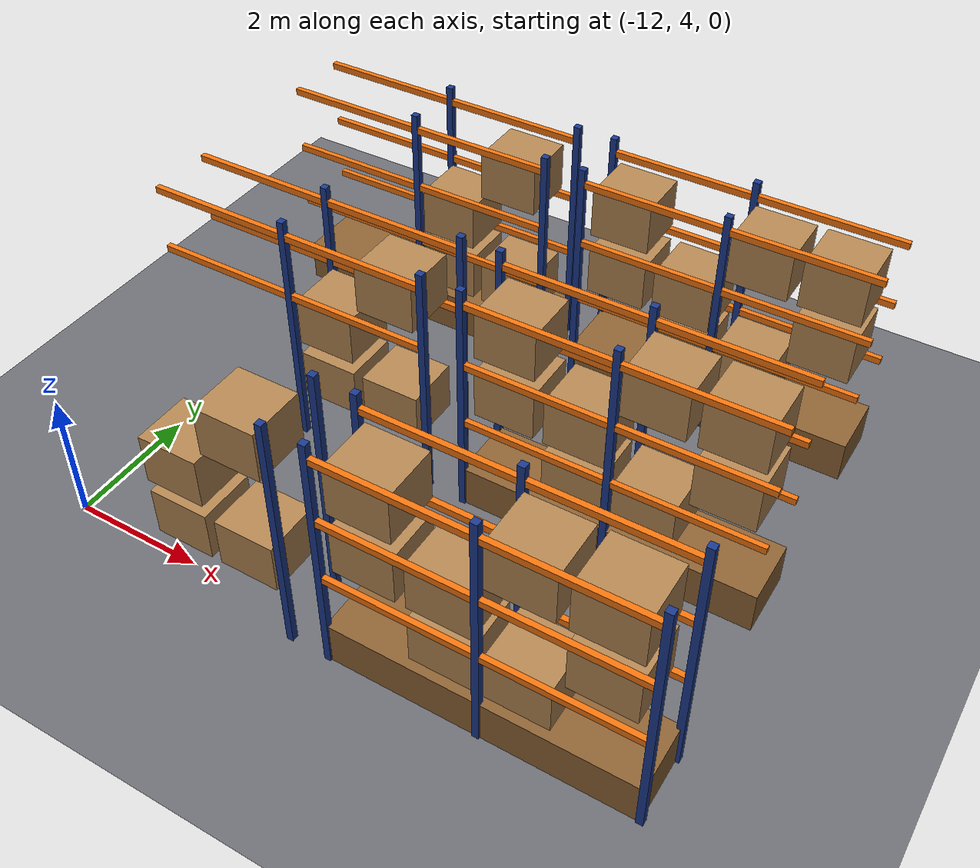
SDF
<sdf version="1.8">
 <world name="factory">
  <model name="ground">
   <static>true</static>
   <link name="l">
    <collision name="c">
     <geometry><plane><normal>0 0 1</normal><size>60 40</size></plane></geometry>
     <surface><friction><ode><mu>1.0</mu><mu2>1.0</mu2></ode></friction></surface>
    </collision>
    <visual name="v">
     <geometry><plane><normal>0 0 1</normal><size>60 40</size></plane></geometry>
     <material>
      <ambient>0.42 0.43 0.45 1</ambient>
      <diffuse>0.42 0.43 0.45 1</diffuse>
      <specular>0.3 0.3 0.3 1</specular>
      <pbr><metal><metalness>0.0</metalness><roughness>0.85</roughness></metal></pbr>
     </material>
    </visual>
   </link>
  </model>
  <model name="pallet_racks">
   <static>true</static>
   <link name="l23">
    <pose>-9.800 4.200 1.125 0 0 0.000</pose>
    <collision name="c"><geometry><box><size>0.9 0.85 0.75</size></box></geometry></collision>
    <visual name="v">
     <geometry><box><size>0.9 0.85 0.75</size></box></geometry>
     <material>
      <ambient>0.7 0.52 0.32 1</ambient>
      <diffuse>0.7 0.52 0.32 1</diffuse>
      <specular>0.3 0.3 0.3 1</specular>
      <pbr><metal><metalness>0.0</metalness><roughness>0.95</roughness></metal></pbr>
     </material>
    </visual>
   </link>
   <link name="l24">
    <pose>-8.750 4.200 1.125 0 0 0.000</pose>
    <collision name="c"><geometry><box><size>0.9 0.85 0.75</size></box></geometry></collision>
    <visual name="v">
     <geometry><box><size>0.9 0.85 0.75</size></box></geometry>
     <material>
      <ambient>0.7 0.52 0.32 1</ambient>
      <diffuse>0.7 0.52 0.32 1</diffuse>
      <specular>0.3 0.3 0.3 1</specular>
      <pbr><metal><metalness>0.0</metalness><roughness>0.95</roughness></metal></pbr>
     </material>
    </visual>
   </link>
   <link name="l26">
    <pose>-9.800 4.200 2.075 0 0 0.000</pose>
    <collision name="c"><geometry><box><size>0.9 0.85 0.75</size></box></geometry></collision>
    <visual name="v">
     <geometry><box><size>0.9 0.85 0.75</size></box></geometry>
     <material>
      <ambient>0.7 0.52 0.32 1</ambient>
      <diffuse>0.7 0.52 0.32 1</diffuse>
      <specular>0.3 0.3 0.3 1</specular>
      <pbr><metal><metalness>0.0</metalness><roughness>0.95</roughness></metal></pbr>
     </material>
    </visual>
   </link>
   <link name="l29">
    <pose>-8.750 4.200 3.075 0 0 0.000</pose>
    <collision name="c"><geometry><box><size>0.9 0.85 0.75</size></box></geometry></collision>
    <visual name="v">
     <geometry><box><size>0.9 0.85 0.75</size></box></geometry>
     <material>
      <ambient>0.7 0.52 0.32 1</ambient>
      <diffuse>0.7 0.52 0.32 1</diffuse>
      <specular>0.3 0.3 0.3 1</specular>
      <pbr><metal><metalness>0.0</metalness><roughness>0.95</roughness></metal></pbr>
     </material>
    </visual>
   </link>
   <link name="l40">
    <pose>-8.100 3.720 1.900 0 0 0.000</pose>
    <collision name="c"><geometry><box><size>0.1 0.1 3.8</size></box></geometry></collision>
    <visual name="v">
     <geometry><box><size>0.1 0.1 3.8</size></box></geometry>
     <material>
      <ambient>0.1 0.22 0.55 1</ambient>
      <diffuse>0.1 0.22 0.55 1</diffuse>
      <specular>0.3 0.3 0.3 1</specular>
      <pbr><metal><metalness>0.6</metalness><roughness>0.4</roughness></metal></pbr>
     </material>
    </visual>
   </link>
   <link name="l41">
    <pose>-8.100 4.680 1.900 0 0 0.000</pose>
    <collision name="c"><geometry><box><size>0.1 0.1 3.8</size></box></geometry></collision>
    <visual name="v">
     <geometry><box><size>0.1 0.1 3.8</size></box></geometry>
     <material>
      <ambient>0.1 0.22 0.55 1</ambient>
      <diffuse>0.1 0.22 0.55 1</diffuse>
      <specular>0.3 0.3 0.3 1</specular>
      <pbr><metal><metalness>0.6</metalness><roughness>0.4</roughness></metal></pbr>
     </material>
    </visual>
   </link>
   <link name="l42">
    <pose>-5.300 4.200 0.325 0 0 0.000</pose>
    <collision name="c"><geometry><box><size>4.4 1.0 0.65</size></box></geometry></collision>
    <visual name="v">
     <geometry><box><size>4.4 1.0 0.65</size></box></geometry>
     <material>
      <ambient>0.55 0.38 0.2 1</ambient>
      <diffuse>0.55 0.38 0.2 1</diffuse>
      <specular>0.3 0.3 0.3 1</specular>
      <pbr><metal><metalness>0.0</metalness><roughness>0.9</roughness></metal></pbr>
     </material>
    </visual>
   </link>
   <link name="l43">
    <pose>-5.850 4.200 1.125 0 0 0.000</pose>
    <collision name="c"><geometry><box><size>0.9 0.85 0.75</size></box></geometry></collision>
    <visual name="v">
     <geometry><box><size>0.9 0.85 0.75</size></box></geometry>
     <material>
      <ambient>0.7 0.52 0.32 1</ambient>
      <diffuse>0.7 0.52 0.32 1</diffuse>
      <specular>0.3 0.3 0.3 1</specular>
      <pbr><metal><metalness>0.0</metalness><roughness>0.95</roughness></metal></pbr>
     </material>
    </visual>
   </link>
   <link name="l44">
    <pose>-4.800 4.200 1.125 0 0 0.000</pose>
    <collision name="c"><geometry><box><size>0.9 0.85 0.75</size></box></geometry></collision>
    <visual name="v">
     <geometry><box><size>0.9 0.85 0.75</size></box></geometry>
     <material>
      <ambient>0.7 0.52 0.32 1</ambient>
      <diffuse>0.7 0.52 0.32 1</diffuse>
      <specular>0.3 0.3 0.3 1</specular>
      <pbr><metal><metalness>0.0</metalness><roughness>0.95</roughness></metal></pbr>
     </material>
    </visual>
   </link>
   <link name="l45">
    <pose>-6.900 4.200 2.075 0 0 0.000</pose>
    <collision name="c"><geometry><box><size>0.9 0.85 0.75</size></box></geometry></collision>
    <visual name="v">
     <geometry><box><size>0.9 0.85 0.75</size></box></geometry>
     <material>
      <ambient>0.7 0.52 0.32 1</ambient>
      <diffuse>0.7 0.52 0.32 1</diffuse>
      <specular>0.3 0.3 0.3 1</specular>
      <pbr><metal><metalness>0.0</metalness><roughness>0.95</roughness></metal></pbr>
     </material>
    </visual>
   </link>
   <link name="l46">
    <pose>-5.850 4.200 2.075 0 0 0.000</pose>
    <collision name="c"><geometry><box><size>0.9 0.85 0.75</size></box></geometry></collision>
    <visual name="v">
     <geometry><box><size>0.9 0.85 0.75</size></box></geometry>
     <material>
      <ambient>0.7 0.52 0.32 1</ambient>
      <diffuse>0.7 0.52 0.32 1</diffuse>
      <specular>0.3 0.3 0.3 1</specular>
      <pbr><metal><metalness>0.0</metalness><roughness>0.95</roughness></metal></pbr>
     </material>
    </visual>
   </link>
   <link name="l47">
    <pose>-3.750 4.200 2.075 0 0 0.000</pose>
    <collision name="c"><geometry><box><size>0.9 0.85 0.75</size></box></geometry></collision>
    <visual name="v">
     <geometry><box><size>0.9 0.85 0.75</size></box></geometry>
     <material>
      <ambient>0.7 0.52 0.32 1</ambient>
      <diffuse>0.7 0.52 0.32 1</diffuse>
      <specular>0.3 0.3 0.3 1</specular>
      <pbr><metal><metalness>0.0</metalness><roughness>0.95</roughness></metal></pbr>
     </material>
    </visual>
   </link>
   <link name="l48">
    <pose>-6.900 4.200 3.075 0 0 0.000</pose>
    <collision name="c"><geometry><box><size>0.9 0.85 0.75</size></box></geometry></collision>
    <visual name="v">
     <geometry><box><size>0.9 0.85 0.75</size></box></geometry>
     <material>
      <ambient>0.7 0.52 0.32 1</ambient>
      <diffuse>0.7 0.52 0.32 1</diffuse>
      <specular>0.3 0.3 0.3 1</specular>
      <pbr><metal><metalness>0.0</metalness><roughness>0.95</roughness></metal></pbr>
     </material>
    </visual>
   </link>
   <link name="l49">
    <pose>-4.800 4.200 3.075 0 0 0.000</pose>
    <collision name="c"><geometry><box><size>0.9 0.85 0.75</size></box></geometry></collision>
    <visual name="v">
     <geometry><box><size>0.9 0.85 0.75</size></box></geometry>
     <material>
      <ambient>0.7 0.52 0.32 1</ambient>
      <diffuse>0.7 0.52 0.32 1</diffuse>
      <specular>0.3 0.3 0.3 1</specular>
      <pbr><metal><metalness>0.0</metalness><roughness>0.95</roughness></metal></pbr>
     </material>
    </visual>
   </link>
   <link name="l50">
    <pose>-3.750 4.200 3.075 0 0 0.000</pose>
    <collision name="c"><geometry><box><size>0.9 0.85 0.75</size></box></geometry></collision>
    <visual name="v">
     <geometry><box><size>0.9 0.85 0.75</size></box></geometry>
     <material>
      <ambient>0.7 0.52 0.32 1</ambient>
      <diffuse>0.7 0.52 0.32 1</diffuse>
      <specular>0.3 0.3 0.3 1</specular>
      <pbr><metal><metalness>0.0</metalness><roughness>0.95</roughness></metal></pbr>
     </material>
    </visual>
   </link>
   <link name="l51">
    <pose>-5.300 3.720 1.550 0 0 0.000</pose>
    <collision name="c"><geometry><box><size>4.4 0.08 0.1</size></box></geometry></collision>
    <visual name="v">
     <geometry><box><size>4.4 0.08 0.1</size></box></geometry>
     <material>
      <ambient>0.95 0.45 0.05 1</ambient>
      <diffuse>0.95 0.45 0.05 1</diffuse>
      <specular>0.3 0.3 0.3 1</specular>
      <pbr><metal><metalness>0.5</metalness><roughness>0.4</roughness></metal></pbr>
     </material>
    </visual>
   </link>
   <link name="l52">
    <pose>-5.300 4.680 1.550 0 0 0.000</pose>
    <collision name="c"><geometry><box><size>4.4 0.08 0.1</size></box></geometry></collision>
    <visual name="v">
     <geometry><box><size>4.4 0.08 0.1</size></box></geometry>
     <material>
      <ambient>0.95 0.45 0.05 1</ambient>
      <diffuse>0.95 0.45 0.05 1</diffuse>
      <specular>0.3 0.3 0.3 1</specular>
      <pbr><metal><metalness>0.5</metalness><roughness>0.4</roughness></metal></pbr>
     </material>
    </visual>
   </link>
   <link name="l53">
    <pose>-5.300 3.720 2.550 0 0 0.000</pose>
    <collision name="c"><geometry><box><size>4.4 0.08 0.1</size></box></geometry></collision>
    <visual name="v">
     <geometry><box><size>4.4 0.08 0.1</size></box></geometry>
     <material>
      <ambient>0.95 0.45 0.05 1</ambient>
      <diffuse>0.95 0.45 0.05 1</diffuse>
      <specular>0.3 0.3 0.3 1</specular>
      <pbr><metal><metalness>0.5</metalness><roughness>0.4</roughness></metal></pbr>
     </material>
    </visual>
   </link>
   <link name="l54">
    <pose>-5.300 4.680 2.550 0 0 0.000</pose>
    <collision name="c"><geometry><box><size>4.4 0.08 0.1</size></box></geometry></collision>
    <visual name="v">
     <geometry><box><size>4.4 0.08 0.1</size></box></geometry>
     <material>
      <ambient>0.95 0.45 0.05 1</ambient>
      <diffuse>0.95 0.45 0.05 1</diffuse>
      <specular>0.3 0.3 0.3 1</specular>
      <pbr><metal><metalness>0.5</metalness><roughness>0.4</roughness></metal></pbr>
     </material>
    </visual>
   </link>
   <link name="l55">
    <pose>-5.300 3.720 3.550 0 0 0.000</pose>
    <collision name="c"><geometry><box><size>4.4 0.08 0.1</size></box></geometry></collision>
    <visual name="v">
     <geometry><box><size>4.4 0.08 0.1</size></box></geometry>
     <material>
      <ambient>0.95 0.45 0.05 1</ambient>
      <diffuse>0.95 0.45 0.05 1</diffuse>
      <specular>0.3 0.3 0.3 1</specular>
      <pbr><metal><metalness>0.5</metalness><roughness>0.4</roughness></metal></pbr>
     </material>
    </visual>
   </link>
   <link name="l56">
    <pose>-5.300 4.680 3.550 0 0 0.000</pose>
    <collision name="c"><geometry><box><size>4.4 0.08 0.1</size></box></geometry></collision>
    <visual name="v">
     <geometry><box><size>4.4 0.08 0.1</size></box></geometry>
     <material>
      <ambient>0.95 0.45 0.05 1</ambient>
      <diffuse>0.95 0.45 0.05 1</diffuse>
      <specular>0.3 0.3 0.3 1</specular>
      <pbr><metal><metalness>0.5</metalness><roughness>0.4</roughness></metal></pbr>
     </material>
    </visual>
   </link>
   <link name="l57">
    <pose>-7.500 3.720 1.900 0 0 0.000</pose>
    <collision name="c"><geometry><box><size>0.1 0.1 3.8</size></box></geometry></collision>
    <visual name="v">
     <geometry><box><size>0.1 0.1 3.8</size></box></geometry>
     <material>
      <ambient>0.1 0.22 0.55 1</ambient>
      <diffuse>0.1 0.22 0.55 1</diffuse>
      <specular>0.3 0.3 0.3 1</specular>
      <pbr><metal><metalness>0.6</metalness><roughness>0.4</roughness></metal></pbr>
     </material>
    </visual>
   </link>
   <link name="l58">
    <pose>-7.500 4.680 1.900 0 0 0.000</pose>
    <collision name="c"><geometry><box><size>0.1 0.1 3.8</size></box></geometry></collision>
    <visual name="v">
     <geometry><box><size>0.1 0.1 3.8</size></box></geometry>
     <material>
      <ambient>0.1 0.22 0.55 1</ambient>
      <diffuse>0.1 0.22 0.55 1</diffuse>
      <specular>0.3 0.3 0.3 1</specular>
      <pbr><metal><metalness>0.6</metalness><roughness>0.4</roughness></metal></pbr>
     </material>
    </visual>
   </link>
   <link name="l59">
    <pose>-5.300 3.720 1.900 0 0 0.000</pose>
    <collision name="c"><geometry><box><size>0.1 0.1 3.8</size></box></geometry></collision>
    <visual name="v">
     <geometry><box><size>0.1 0.1 3.8</size></box></geometry>
     <material>
      <ambient>0.1 0.22 0.55 1</ambient>
      <diffuse>0.1 0.22 0.55 1</diffuse>
      <specular>0.3 0.3 0.3 1</specular>
      <pbr><metal><metalness>0.6</metalness><roughness>0.4</roughness></metal></pbr>
     </material>
    </visual>
   </link>
   <link name="l60">
    <pose>-5.300 4.680 1.900 0 0 0.000</pose>
    <collision name="c"><geometry><box><size>0.1 0.1 3.8</size></box></geometry></collision>
    <visual name="v">
     <geometry><box><size>0.1 0.1 3.8</size></box></geometry>
     <material>
      <ambient>0.1 0.22 0.55 1</ambient>
      <diffuse>0.1 0.22 0.55 1</diffuse>
      <specular>0.3 0.3 0.3 1</specular>
      <pbr><metal><metalness>0.6</metalness><roughness>0.4</roughness></metal></pbr>
     </material>
    </visual>
   </link>
   <link name="l61">
    <pose>-3.100 3.720 1.900 0 0 0.000</pose>
    <collision name="c"><geometry><box><size>0.1 0.1 3.8</size></box></geometry></collision>
    <visual name="v">
     <geometry><box><size>0.1 0.1 3.8</size></box></geometry>
     <material>
      <ambient>0.1 0.22 0.55 1</ambient>
      <diffuse>0.1 0.22 0.55 1</diffuse>
      <specular>0.3 0.3 0.3 1</specular>
      <pbr><metal><metalness>0.6</metalness><roughness>0.4</roughness></metal></pbr>
     </material>
    </visual>
   </link>
   <link name="l62">
    <pose>-3.100 4.680 1.900 0 0 0.000</pose>
    <collision name="c"><geometry><box><size>0.1 0.1 3.8</size></box></geometry></collision>
    <visual name="v">
     <geometry><box><size>0.1 0.1 3.8</size></box></geometry>
     <material>
      <ambient>0.1 0.22 0.55 1</ambient>
      <diffuse>0.1 0.22 0.55 1</diffuse>
      <specular>0.3 0.3 0.3 1</specular>
      <pbr><metal><metalness>0.6</metalness><roughness>0.4</roughness></metal></pbr>
     </material>
    </visual>
   </link>
   <link name="l86">
    <pose>-9.800 7.400 1.125 0 0 0.000</pose>
    <collision name="c"><geometry><box><size>0.9 0.85 0.75</size></box></geometry></collision>
    <visual name="v">
     <geometry><box><size>0.9 0.85 0.75</size></box></geometry>
     <material>
      <ambient>0.7 0.52 0.32 1</ambient>
      <diffuse>0.7 0.52 0.32 1</diffuse>
      <specular>0.3 0.3 0.3 1</specular>
      <pbr><metal><metalness>0.0</metalness><roughness>0.95</roughness></metal></pbr>
     </material>
    </visual>
   </link>
   <link name="l87">
    <pose>-8.750 7.400 1.125 0 0 0.000</pose>
    <collision name="c"><geometry><box><size>0.9 0.85 0.75</size></box></geometry></collision>
    <visual name="v">
     <geometry><box><size>0.9 0.85 0.75</size></box></geometry>
     <material>
      <ambient>0.7 0.52 0.32 1</ambient>
      <diffuse>0.7 0.52 0.32 1</diffuse>
      <specular>0.3 0.3 0.3 1</specular>
      <pbr><metal><metalness>0.0</metalness><roughness>0.95</roughness></metal></pbr>
     </material>
    </visual>
   </link>
   <link name="l89">
    <pose>-9.800 7.400 2.075 0 0 0.000</pose>
    <collision name="c"><geometry><box><size>0.9 0.85 0.75</size></box></geometry></collision>
    <visual name="v">
     <geometry><box><size>0.9 0.85 0.75</size></box></geometry>
     <material>
      <ambient>0.7 0.52 0.32 1</ambient>
      <diffuse>0.7 0.52 0.32 1</diffuse>
      <specular>0.3 0.3 0.3 1</specular>
      <pbr><metal><metalness>0.0</metalness><roughness>0.95</roughness></metal></pbr>
     </material>
    </visual>
   </link>
   <link name="l92">
    <pose>-8.750 7.400 3.075 0 0 0.000</pose>
    <collision name="c"><geometry><box><size>0.9 0.85 0.75</size></box></geometry></collision>
    <visual name="v">
     <geometry><box><size>0.9 0.85 0.75</size></box></geometry>
     <material>
      <ambient>0.7 0.52 0.32 1</ambient>
      <diffuse>0.7 0.52 0.32 1</diffuse>
      <specular>0.3 0.3 0.3 1</specular>
      <pbr><metal><metalness>0.0</metalness><roughness>0.95</roughness></metal></pbr>
     </material>
    </visual>
   </link>
   <link name="l95">
    <pose>-10.300 6.920 2.550 0 0 0.000</pose>
    <collision name="c"><geometry><box><size>4.4 0.08 0.1</size></box></geometry></collision>
    <visual name="v">
     <geometry><box><size>4.4 0.08 0.1</size></box></geometry>
     <material>
      <ambient>0.95 0.45 0.05 1</ambient>
      <diffuse>0.95 0.45 0.05 1</diffuse>
      <specular>0.3 0.3 0.3 1</specular>
      <pbr><metal><metalness>0.5</metalness><roughness>0.4</roughness></metal></pbr>
     </material>
    </visual>
   </link>
   <link name="l96">
    <pose>-10.300 7.880 2.550 0 0 0.000</pose>
    <collision name="c"><geometry><box><size>4.4 0.08 0.1</size></box></geometry></collision>
    <visual name="v">
     <geometry><box><size>4.4 0.08 0.1</size></box></geometry>
     <material>
      <ambient>0.95 0.45 0.05 1</ambient>
      <diffuse>0.95 0.45 0.05 1</diffuse>
      <specular>0.3 0.3 0.3 1</specular>
      <pbr><metal><metalness>0.5</metalness><roughness>0.4</roughness></metal></pbr>
     </material>
    </visual>
   </link>
   <link name="l97">
    <pose>-10.300 6.920 3.550 0 0 0.000</pose>
    <collision name="c"><geometry><box><size>4.4 0.08 0.1</size></box></geometry></collision>
    <visual name="v">
     <geometry><box><size>4.4 0.08 0.1</size></box></geometry>
     <material>
      <ambient>0.95 0.45 0.05 1</ambient>
      <diffuse>0.95 0.45 0.05 1</diffuse>
      <specular>0.3 0.3 0.3 1</specular>
      <pbr><metal><metalness>0.5</metalness><roughness>0.4</roughness></metal></pbr>
     </material>
    </visual>
   </link>
   <link name="l98">
    <pose>-10.300 7.880 3.550 0 0 0.000</pose>
    <collision name="c"><geometry><box><size>4.4 0.08 0.1</size></box></geometry></collision>
    <visual name="v">
     <geometry><box><size>4.4 0.08 0.1</size></box></geometry>
     <material>
      <ambient>0.95 0.45 0.05 1</ambient>
      <diffuse>0.95 0.45 0.05 1</diffuse>
      <specular>0.3 0.3 0.3 1</specular>
      <pbr><metal><metalness>0.5</metalness><roughness>0.4</roughness></metal></pbr>
     </material>
    </visual>
   </link>
   <link name="l101">
    <pose>-10.300 6.920 1.900 0 0 0.000</pose>
    <collision name="c"><geometry><box><size>0.1 0.1 3.8</size></box></geometry></collision>
    <visual name="v">
     <geometry><box><size>0.1 0.1 3.8</size></box></geometry>
     <material>
      <ambient>0.1 0.22 0.55 1</ambient>
      <diffuse>0.1 0.22 0.55 1</diffuse>
      <specular>0.3 0.3 0.3 1</specular>
      <pbr><metal><metalness>0.6</metalness><roughness>0.4</roughness></metal></pbr>
     </material>
    </visual>
   </link>
   <link name="l102">
    <pose>-10.300 7.880 1.900 0 0 0.000</pose>
    <collision name="c"><geometry><box><size>0.1 0.1 3.8</size></box></geometry></collision>
    <visual name="v">
     <geometry><box><size>0.1 0.1 3.8</size></box></geometry>
     <material>
      <ambient>0.1 0.22 0.55 1</ambient>
      <diffuse>0.1 0.22 0.55 1</diffuse>
      <specular>0.3 0.3 0.3 1</specular>
      <pbr><metal><metalness>0.6</metalness><roughness>0.4</roughness></metal></pbr>
     </material>
    </visual>
   </link>
   <link name="l103">
    <pose>-8.100 6.920 1.900 0 0 0.000</pose>
    <collision name="c"><geometry><box><size>0.1 0.1 3.8</size></box></geometry></collision>
    <visual name="v">
     <geometry><box><size>0.1 0.1 3.8</size></box></geometry>
     <material>
      <ambient>0.1 0.22 0.55 1</ambient>
      <diffuse>0.1 0.22 0.55 1</diffuse>
      <specular>0.3 0.3 0.3 1</specular>
      <pbr><metal><metalness>0.6</metalness><roughness>0.4</roughness></metal></pbr>
     </material>
    </visual>
   </link>
   <link name="l104">
    <pose>-8.100 7.880 1.900 0 0 0.000</pose>
    <collision name="c"><geometry><box><size>0.1 0.1 3.8</size></box></geometry></collision>
    <visual name="v">
     <geometry><box><size>0.1 0.1 3.8</size></box></geometry>
     <material>
      <ambient>0.1 0.22 0.55 1</ambient>
      <diffuse>0.1 0.22 0.55 1</diffuse>
      <specular>0.3 0.3 0.3 1</specular>
      <pbr><metal><metalness>0.6</metalness><roughness>0.4</roughness></metal></pbr>
     </material>
    </visual>
   </link>
   <link name="l105">
    <pose>-5.300 7.400 0.325 0 0 0.000</pose>
    <collision name="c"><geometry><box><size>4.4 1.0 0.65</size></box></geometry></collision>
    <visual name="v">
     <geometry><box><size>4.4 1.0 0.65</size></box></geometry>
     <material>
      <ambient>0.55 0.38 0.2 1</ambient>
      <diffuse>0.55 0.38 0.2 1</diffuse>
      <specular>0.3 0.3 0.3 1</specular>
      <pbr><metal><metalness>0.0</metalness><roughness>0.9</roughness></metal></pbr>
     </material>
    </visual>
   </link>
   <link name="l106">
    <pose>-5.850 7.400 1.125 0 0 0.000</pose>
    <collision name="c"><geometry><box><size>0.9 0.85 0.75</size></box></geometry></collision>
    <visual name="v">
     <geometry><box><size>0.9 0.85 0.75</size></box></geometry>
     <material>
      <ambient>0.7 0.52 0.32 1</ambient>
      <diffuse>0.7 0.52 0.32 1</diffuse>
      <specular>0.3 0.3 0.3 1</specular>
      <pbr><metal><metalness>0.0</metalness><roughness>0.95</roughness></metal></pbr>
     </material>
    </visual>
   </link>
   <link name="l107">
    <pose>-4.800 7.400 1.125 0 0 0.000</pose>
    <collision name="c"><geometry><box><size>0.9 0.85 0.75</size></box></geometry></collision>
    <visual name="v">
     <geometry><box><size>0.9 0.85 0.75</size></box></geometry>
     <material>
      <ambient>0.7 0.52 0.32 1</ambient>
      <diffuse>0.7 0.52 0.32 1</diffuse>
      <specular>0.3 0.3 0.3 1</specular>
      <pbr><metal><metalness>0.0</metalness><roughness>0.95</roughness></metal></pbr>
     </material>
    </visual>
   </link>
   <link name="l108">
    <pose>-6.900 7.400 2.075 0 0 0.000</pose>
    <collision name="c"><geometry><box><size>0.9 0.85 0.75</size></box></geometry></collision>
    <visual name="v">
     <geometry><box><size>0.9 0.85 0.75</size></box></geometry>
     <material>
      <ambient>0.7 0.52 0.32 1</ambient>
      <diffuse>0.7 0.52 0.32 1</diffuse>
      <specular>0.3 0.3 0.3 1</specular>
      <pbr><metal><metalness>0.0</metalness><roughness>0.95</roughness></metal></pbr>
     </material>
    </visual>
   </link>
   <link name="l109">
    <pose>-5.850 7.400 2.075 0 0 0.000</pose>
    <collision name="c"><geometry><box><size>0.9 0.85 0.75</size></box></geometry></collision>
    <visual name="v">
     <geometry><box><size>0.9 0.85 0.75</size></box></geometry>
     <material>
      <ambient>0.7 0.52 0.32 1</ambient>
      <diffuse>0.7 0.52 0.32 1</diffuse>
      <specular>0.3 0.3 0.3 1</specular>
      <pbr><metal><metalness>0.0</metalness><roughness>0.95</roughness></metal></pbr>
     </material>
    </visual>
   </link>
   <link name="l110">
    <pose>-3.750 7.400 2.075 0 0 0.000</pose>
    <collision name="c"><geometry><box><size>0.9 0.85 0.75</size></box></geometry></collision>
    <visual name="v">
     <geometry><box><size>0.9 0.85 0.75</size></box></geometry>
     <material>
      <ambient>0.7 0.52 0.32 1</ambient>
      <diffuse>0.7 0.52 0.32 1</diffuse>
      <specular>0.3 0.3 0.3 1</specular>
      <pbr><metal><metalness>0.0</metalness><roughness>0.95</roughness></metal></pbr>
     </material>
    </visual>
   </link>
   <link name="l111">
    <pose>-6.900 7.400 3.075 0 0 0.000</pose>
    <collision name="c"><geometry><box><size>0.9 0.85 0.75</size></box></geometry></collision>
    <visual name="v">
     <geometry><box><size>0.9 0.85 0.75</size></box></geometry>
     <material>
      <ambient>0.7 0.52 0.32 1</ambient>
      <diffuse>0.7 0.52 0.32 1</diffuse>
      <specular>0.3 0.3 0.3 1</specular>
      <pbr><metal><metalness>0.0</metalness><roughness>0.95</roughness></metal></pbr>
     </material>
    </visual>
   </link>
   <link name="l112">
    <pose>-4.800 7.400 3.075 0 0 0.000</pose>
    <collision name="c"><geometry><box><size>0.9 0.85 0.75</size></box></geometry></collision>
    <visual name="v">
     <geometry><box><size>0.9 0.85 0.75</size></box></geometry>
     <material>
      <ambient>0.7 0.52 0.32 1</ambient>
      <diffuse>0.7 0.52 0.32 1</diffuse>
      <specular>0.3 0.3 0.3 1</specular>
      <pbr><metal><metalness>0.0</metalness><roughness>0.95</roughness></metal></pbr>
     </material>
    </visual>
   </link>
   <link name="l113">
    <pose>-3.750 7.400 3.075 0 0 0.000</pose>
    <collision name="c"><geometry><box><size>0.9 0.85 0.75</size></box></geometry></collision>
    <visual name="v">
     <geometry><box><size>0.9 0.85 0.75</size></box></geometry>
     <material>
      <ambient>0.7 0.52 0.32 1</ambient>
      <diffuse>0.7 0.52 0.32 1</diffuse>
      <specular>0.3 0.3 0.3 1</specular>
      <pbr><metal><metalness>0.0</metalness><roughness>0.95</roughness></metal></pbr>
     </material>
    </visual>
   </link>
   <link name="l114">
    <pose>-5.300 6.920 1.550 0 0 0.000</pose>
    <collision name="c"><geometry><box><size>4.4 0.08 0.1</size></box></geometry></collision>
    <visual name="v">
     <geometry><box><size>4.4 0.08 0.1</size></box></geometry>
     <material>
      <ambient>0.95 0.45 0.05 1</ambient>
      <diffuse>0.95 0.45 0.05 1</diffuse>
      <specular>0.3 0.3 0.3 1</specular>
      <pbr><metal><metalness>0.5</metalness><roughness>0.4</roughness></metal></pbr>
     </material>
    </visual>
   </link>
   <link name="l115">
    <pose>-5.300 7.880 1.550 0 0 0.000</pose>
    <collision name="c"><geometry><box><size>4.4 0.08 0.1</size></box></geometry></collision>
    <visual name="v">
     <geometry><box><size>4.4 0.08 0.1</size></box></geometry>
     <material>
      <ambient>0.95 0.45 0.05 1</ambient>
      <diffuse>0.95 0.45 0.05 1</diffuse>
      <specular>0.3 0.3 0.3 1</specular>
      <pbr><metal><metalness>0.5</metalness><roughness>0.4</roughness></metal></pbr>
     </material>
    </visual>
   </link>
   <link name="l116">
    <pose>-5.300 6.920 2.550 0 0 0.000</pose>
    <collision name="c"><geometry><box><size>4.4 0.08 0.1</size></box></geometry></collision>
    <visual name="v">
     <geometry><box><size>4.4 0.08 0.1</size></box></geometry>
     <material>
      <ambient>0.95 0.45 0.05 1</ambient>
      <diffuse>0.95 0.45 0.05 1</diffuse>
      <specular>0.3 0.3 0.3 1</specular>
      <pbr><metal><metalness>0.5</metalness><roughness>0.4</roughness></metal></pbr>
     </material>
    </visual>
   </link>
   <link name="l117">
    <pose>-5.300 7.880 2.550 0 0 0.000</pose>
    <collision name="c"><geometry><box><size>4.4 0.08 0.1</size></box></geometry></collision>
    <visual name="v">
     <geometry><box><size>4.4 0.08 0.1</size></box></geometry>
     <material>
      <ambient>0.95 0.45 0.05 1</ambient>
      <diffuse>0.95 0.45 0.05 1</diffuse>
      <specular>0.3 0.3 0.3 1</specular>
      <pbr><metal><metalness>0.5</metalness><roughness>0.4</roughness></metal></pbr>
     </material>
    </visual>
   </link>
   <link name="l118">
    <pose>-5.300 6.920 3.550 0 0 0.000</pose>
    <collision name="c"><geometry><box><size>4.4 0.08 0.1</size></box></geometry></collision>
    <visual name="v">
     <geometry><box><size>4.4 0.08 0.1</size></box></geometry>
     <material>
      <ambient>0.95 0.45 0.05 1</ambient>
      <diffuse>0.95 0.45 0.05 1</diffuse>
      <specular>0.3 0.3 0.3 1</specular>
      <pbr><metal><metalness>0.5</metalness><roughness>0.4</roughness></metal></pbr>
     </material>
    </visual>
   </link>
   <link name="l119">
    <pose>-5.300 7.880 3.550 0 0 0.000</pose>
    <collision name="c"><geometry><box><size>4.4 0.08 0.1</size></box></geometry></collision>
    <visual name="v">
     <geometry><box><size>4.4 0.08 0.1</size></box></geometry>
     <material>
      <ambient>0.95 0.45 0.05 1</ambient>
      <diffuse>0.95 0.45 0.05 1</diffuse>
      <specular>0.3 0.3 0.3 1</specular>
      <pbr><metal><metalness>0.5</metalness><roughness>0.4</roughness></metal></pbr>
     </material>
    </visual>
   </link>
   <link name="l120">
    <pose>-7.500 6.920 1.900 0 0 0.000</pose>
    <collision name="c"><geometry><box><size>0.1 0.1 3.8</size></box></geometry></collision>
    <visual name="v">
     <geometry><box><size>0.1 0.1 3.8</size></box></geometry>
     <material>
      <ambient>0.1 0.22 0.55 1</ambient>
      <diffuse>0.1 0.22 0.55 1</diffuse>
      <specular>0.3 0.3 0.3 1</specular>
      <pbr><metal><metalness>0.6</metalness><roughness>0.4</roughness></metal></pbr>
     </material>
    </visual>
   </link>
   <link name="l121">
    <pose>-7.500 7.880 1.900 0 0 0.000</pose>
    <collision name="c"><geometry><box><size>0.1 0.1 3.8</size></box></geometry></collision>
    <visual name="v">
     <geometry><box><size>0.1 0.1 3.8</size></box></geometry>
     <material>
      <ambient>0.1 0.22 0.55 1</ambient>
      <diffuse>0.1 0.22 0.55 1</diffuse>
      <specular>0.3 0.3 0.3 1</specular>
      <pbr><metal><metalness>0.6</metalness><roughness>0.4</roughness></metal></pbr>
     </material>
    </visual>
   </link>
   <link name="l122">
    <pose>-5.300 6.920 1.900 0 0 0.000</pose>
    <collision name="c"><geometry><box><size>0.1 0.1 3.8</size></box></geometry></collision>
    <visual name="v">
     <geometry><box><size>0.1 0.1 3.8</size></box></geometry>
     <material>
      <ambient>0.1 0.22 0.55 1</ambient>
      <diffuse>0.1 0.22 0.55 1</diffuse>
      <specular>0.3 0.3 0.3 1</specular>
      <pbr><metal><metalness>0.6</metalness><roughness>0.4</roughness></metal></pbr>
     </material>
    </visual>
   </link>
   <link name="l123">
    <pose>-5.300 7.880 1.900 0 0 0.000</pose>
    <collision name="c"><geometry><box><size>0.1 0.1 3.8</size></box></geometry></collision>
    <visual name="v">
     <geometry><box><size>0.1 0.1 3.8</size></box></geometry>
     <material>
      <ambient>0.1 0.22 0.55 1</ambient>
      <diffuse>0.1 0.22 0.55 1</diffuse>
      <specular>0.3 0.3 0.3 1</specular>
      <pbr><metal><metalness>0.6</metalness><roughness>0.4</roughness></metal></pbr>
     </material>
    </visual>
   </link>
   <link name="l147">
    <pose>-10.300 10.600 0.325 0 0 0.000</pose>
    <collision name="c"><geometry><box><size>4.4 1.0 0.65</size></box></geometry></collision>
    <visual name="v">
     <geometry><box><size>4.4 1.0 0.65</size></box></geometry>
     <material>
      <ambient>0.55 0.38 0.2 1</ambient>
      <diffuse>0.55 0.38 0.2 1</diffuse>
      <specular>0.3 0.3 0.3 1</specular>
      <pbr><metal><metalness>0.0</metalness><roughness>0.9</roughness></metal></pbr>
     </material>
    </visual>
   </link>
   <link name="l149">
    <pose>-9.800 10.600 1.125 0 0 0.000</pose>
    <collision name="c"><geometry><box><size>0.9 0.85 0.75</size></box></geometry></collision>
    <visual name="v">
     <geometry><box><size>0.9 0.85 0.75</size></box></geometry>
     <material>
      <ambient>0.7 0.52 0.32 1</ambient>
      <diffuse>0.7 0.52 0.32 1</diffuse>
      <specular>0.3 0.3 0.3 1</specular>
      <pbr><metal><metalness>0.0</metalness><roughness>0.95</roughness></metal></pbr>
     </material>
    </visual>
   </link>
   <link name="l150">
    <pose>-8.750 10.600 1.125 0 0 0.000</pose>
    <collision name="c"><geometry><box><size>0.9 0.85 0.75</size></box></geometry></collision>
    <visual name="v">
     <geometry><box><size>0.9 0.85 0.75</size></box></geometry>
     <material>
      <ambient>0.7 0.52 0.32 1</ambient>
      <diffuse>0.7 0.52 0.32 1</diffuse>
      <specular>0.3 0.3 0.3 1</specular>
      <pbr><metal><metalness>0.0</metalness><roughness>0.95</roughness></metal></pbr>
     </material>
    </visual>
   </link>
   <link name="l152">
    <pose>-9.800 10.600 2.075 0 0 0.000</pose>
    <collision name="c"><geometry><box><size>0.9 0.85 0.75</size></box></geometry></collision>
    <visual name="v">
     <geometry><box><size>0.9 0.85 0.75</size></box></geometry>
     <material>
      <ambient>0.7 0.52 0.32 1</ambient>
      <diffuse>0.7 0.52 0.32 1</diffuse>
      <specular>0.3 0.3 0.3 1</specular>
      <pbr><metal><metalness>0.0</metalness><roughness>0.95</roughness></metal></pbr>
     </material>
    </visual>
   </link>
   <link name="l155">
    <pose>-8.750 10.600 3.075 0 0 0.000</pose>
    <collision name="c"><geometry><box><size>0.9 0.85 0.75</size></box></geometry></collision>
    <visual name="v">
     <geometry><box><size>0.9 0.85 0.75</size></box></geometry>
     <material>
      <ambient>0.7 0.52 0.32 1</ambient>
      <diffuse>0.7 0.52 0.32 1</diffuse>
      <specular>0.3 0.3 0.3 1</specular>
      <pbr><metal><metalness>0.0</metalness><roughness>0.95</roughness></metal></pbr>
     </material>
    </visual>
   </link>
   <link name="l156">
    <pose>-10.300 10.120 1.550 0 0 0.000</pose>
    <collision name="c"><geometry><box><size>4.4 0.08 0.1</size></box></geometry></collision>
    <visual name="v">
     <geometry><box><size>4.4 0.08 0.1</size></box></geometry>
     <material>
      <ambient>0.95 0.45 0.05 1</ambient>
      <diffuse>0.95 0.45 0.05 1</diffuse>
      <specular>0.3 0.3 0.3 1</specular>
      <pbr><metal><metalness>0.5</metalness><roughness>0.4</roughness></metal></pbr>
     </material>
    </visual>
   </link>
   <link name="l157">
    <pose>-10.300 11.080 1.550 0 0 0.000</pose>
    <collision name="c"><geometry><box><size>4.4 0.08 0.1</size></box></geometry></collision>
    <visual name="v">
     <geometry><box><size>4.4 0.08 0.1</size></box></geometry>
     <material>
      <ambient>0.95 0.45 0.05 1</ambient>
      <diffuse>0.95 0.45 0.05 1</diffuse>
      <specular>0.3 0.3 0.3 1</specular>
      <pbr><metal><metalness>0.5</metalness><roughness>0.4</roughness></metal></pbr>
     </material>
    </visual>
   </link>
   <link name="l158">
    <pose>-10.300 10.120 2.550 0 0 0.000</pose>
    <collision name="c"><geometry><box><size>4.4 0.08 0.1</size></box></geometry></collision>
    <visual name="v">
     <geometry><box><size>4.4 0.08 0.1</size></box></geometry>
     <material>
      <ambient>0.95 0.45 0.05 1</ambient>
      <diffuse>0.95 0.45 0.05 1</diffuse>
      <specular>0.3 0.3 0.3 1</specular>
      <pbr><metal><metalness>0.5</metalness><roughness>0.4</roughness></metal></pbr>
     </material>
    </visual>
   </link>
   <link name="l159">
    <pose>-10.300 11.080 2.550 0 0 0.000</pose>
    <collision name="c"><geometry><box><size>4.4 0.08 0.1</size></box></geometry></collision>
    <visual name="v">
     <geometry><box><size>4.4 0.08 0.1</size></box></geometry>
     <material>
      <ambient>0.95 0.45 0.05 1</ambient>
      <diffuse>0.95 0.45 0.05 1</diffuse>
      <specular>0.3 0.3 0.3 1</specular>
      <pbr><metal><metalness>0.5</metalness><roughness>0.4</roughness></metal></pbr>
     </material>
    </visual>
   </link>
   <link name="l160">
    <pose>-10.300 10.120 3.550 0 0 0.000</pose>
    <collision name="c"><geometry><box><size>4.4 0.08 0.1</size></box></geometry></collision>
    <visual name="v">
     <geometry><box><size>4.4 0.08 0.1</size></box></geometry>
     <material>
      <ambient>0.95 0.45 0.05 1</ambient>
      <diffuse>0.95 0.45 0.05 1</diffuse>
      <specular>0.3 0.3 0.3 1</specular>
      <pbr><metal><metalness>0.5</metalness><roughness>0.4</roughness></metal></pbr>
     </material>
    </visual>
   </link>
   <link name="l161">
    <pose>-10.300 11.080 3.550 0 0 0.000</pose>
    <collision name="c"><geometry><box><size>4.4 0.08 0.1</size></box></geometry></collision>
    <visual name="v">
     <geometry><box><size>4.4 0.08 0.1</size></box></geometry>
     <material>
      <ambient>0.95 0.45 0.05 1</ambient>
      <diffuse>0.95 0.45 0.05 1</diffuse>
      <specular>0.3 0.3 0.3 1</specular>
      <pbr><metal><metalness>0.5</metalness><roughness>0.4</roughness></metal></pbr>
     </material>
    </visual>
   </link>
   <link name="l164">
    <pose>-10.300 10.120 1.900 0 0 0.000</pose>
    <collision name="c"><geometry><box><size>0.1 0.1 3.8</size></box></geometry></collision>
    <visual name="v">
     <geometry><box><size>0.1 0.1 3.8</size></box></geometry>
     <material>
      <ambient>0.1 0.22 0.55 1</ambient>
      <diffuse>0.1 0.22 0.55 1</diffuse>
      <specular>0.3 0.3 0.3 1</specular>
      <pbr><metal><metalness>0.6</metalness><roughness>0.4</roughness></metal></pbr>
     </material>
    </visual>
   </link>
   <link name="l165">
    <pose>-10.300 11.080 1.900 0 0 0.000</pose>
    <collision name="c"><geometry><box><size>0.1 0.1 3.8</size></box></geometry></collision>
    <visual name="v">
     <geometry><box><size>0.1 0.1 3.8</size></box></geometry>
     <material>
      <ambient>0.1 0.22 0.55 1</ambient>
      <diffuse>0.1 0.22 0.55 1</diffuse>
      <specular>0.3 0.3 0.3 1</specular>
      <pbr><metal><metalness>0.6</metalness><roughness>0.4</roughness></metal></pbr>
     </material>
    </visual>
   </link>
   <link name="l166">
    <pose>-8.100 10.120 1.900 0 0 0.000</pose>
    <collision name="c"><geometry><box><size>0.1 0.1 3.8</size></box></geometry></collision>
    <visual name="v">
     <geometry><box><size>0.1 0.1 3.8</size></box></geometry>
     <material>
      <ambient>0.1 0.22 0.55 1</ambient>
      <diffuse>0.1 0.22 0.55 1</diffuse>
      <specular>0.3 0.3 0.3 1</specular>
      <pbr><metal><metalness>0.6</metalness><roughness>0.4</roughness></metal></pbr>
     </material>
    </visual>
   </link>
   <link name="l167">
    <pose>-8.100 11.080 1.900 0 0 0.000</pose>
    <collision name="c"><geometry><box><size>0.1 0.1 3.8</size></box></geometry></collision>
    <visual name="v">
     <geometry><box><size>0.1 0.1 3.8</size></box></geometry>
     <material>
      <ambient>0.1 0.22 0.55 1</ambient>
      <diffuse>0.1 0.22 0.55 1</diffuse>
      <specular>0.3 0.3 0.3 1</specular>
      <pbr><metal><metalness>0.6</metalness><roughness>0.4</roughness></metal></pbr>
     </material>
    </visual>
   </link>
   <link name="l168">
    <pose>-5.300 10.600 0.325 0 0 0.000</pose>
    <collision name="c"><geometry><box><size>4.4 1.0 0.65</size></box></geometry></collision>
    <visual name="v">
     <geometry><box><size>4.4 1.0 0.65</size></box></geometry>
     <material>
      <ambient>0.55 0.38 0.2 1</ambient>
      <diffuse>0.55 0.38 0.2 1</diffuse>
      <specular>0.3 0.3 0.3 1</specular>
      <pbr><metal><metalness>0.0</metalness><roughness>0.9</roughness></metal></pbr>
     </material>
    </visual>
   </link>
   <link name="l169">
    <pose>-5.850 10.600 1.125 0 0 0.000</pose>
    <collision name="c"><geometry><box><size>0.9 0.85 0.75</size></box></geometry></collision>
    <visual name="v">
     <geometry><box><size>0.9 0.85 0.75</size></box></geometry>
     <material>
      <ambient>0.7 0.52 0.32 1</ambient>
      <diffuse>0.7 0.52 0.32 1</diffuse>
      <specular>0.3 0.3 0.3 1</specular>
      <pbr><metal><metalness>0.0</metalness><roughness>0.95</roughness></metal></pbr>
     </material>
    </visual>
   </link>
   <link name="l170">
    <pose>-4.800 10.600 1.125 0 0 0.000</pose>
    <collision name="c"><geometry><box><size>0.9 0.85 0.75</size></box></geometry></collision>
    <visual name="v">
     <geometry><box><size>0.9 0.85 0.75</size></box></geometry>
     <material>
      <ambient>0.7 0.52 0.32 1</ambient>
      <diffuse>0.7 0.52 0.32 1</diffuse>
      <specular>0.3 0.3 0.3 1</specular>
      <pbr><metal><metalness>0.0</metalness><roughness>0.95</roughness></metal></pbr>
     </material>
    </visual>
   </link>
   <link name="l171">
    <pose>-6.900 10.600 2.075 0 0 0.000</pose>
    <collision name="c"><geometry><box><size>0.9 0.85 0.75</size></box></geometry></collision>
    <visual name="v">
     <geometry><box><size>0.9 0.85 0.75</size></box></geometry>
     <material>
      <ambient>0.7 0.52 0.32 1</ambient>
      <diffuse>0.7 0.52 0.32 1</diffuse>
      <specular>0.3 0.3 0.3 1</specular>
      <pbr><metal><metalness>0.0</metalness><roughness>0.95</roughness></metal></pbr>
     </material>
    </visual>
   </link>
   <link name="l172">
    <pose>-5.850 10.600 2.075 0 0 0.000</pose>
    <collision name="c"><geometry><box><size>0.9 0.85 0.75</size></box></geometry></collision>
    <visual name="v">
     <geometry><box><size>0.9 0.85 0.75</size></box></geometry>
     <material>
      <ambient>0.7 0.52 0.32 1</ambient>
      <diffuse>0.7 0.52 0.32 1</diffuse>
      <specular>0.3 0.3 0.3 1</specular>
      <pbr><metal><metalness>0.0</metalness><roughness>0.95</roughness></metal></pbr>
     </material>
    </visual>
   </link>
   <link name="l173">
    <pose>-3.750 10.600 2.075 0 0 0.000</pose>
    <collision name="c"><geometry><box><size>0.9 0.85 0.75</size></box></geometry></collision>
    <visual name="v">
     <geometry><box><size>0.9 0.85 0.75</size></box></geometry>
     <material>
      <ambient>0.7 0.52 0.32 1</ambient>
      <diffuse>0.7 0.52 0.32 1</diffuse>
      <specular>0.3 0.3 0.3 1</specular>
      <pbr><metal><metalness>0.0</metalness><roughness>0.95</roughness></metal></pbr>
     </material>
    </visual>
   </link>
   <link name="l174">
    <pose>-6.900 10.600 3.075 0 0 0.000</pose>
    <collision name="c"><geometry><box><size>0.9 0.85 0.75</size></box></geometry></collision>
    <visual name="v">
     <geometry><box><size>0.9 0.85 0.75</size></box></geometry>
     <material>
      <ambient>0.7 0.52 0.32 1</ambient>
      <diffuse>0.7 0.52 0.32 1</diffuse>
      <specular>0.3 0.3 0.3 1</specular>
      <pbr><metal><metalness>0.0</metalness><roughness>0.95</roughness></metal></pbr>
     </material>
    </visual>
   </link>
   <link name="l175">
    <pose>-4.800 10.600 3.075 0 0 0.000</pose>
    <collision name="c"><geometry><box><size>0.9 0.85 0.75</size></box></geometry></collision>
    <visual name="v">
     <geometry><box><size>0.9 0.85 0.75</size></box></geometry>
     <material>
      <ambient>0.7 0.52 0.32 1</ambient>
      <diffuse>0.7 0.52 0.32 1</diffuse>
      <specular>0.3 0.3 0.3 1</specular>
      <pbr><metal><metalness>0.0</metalness><roughness>0.95</roughness></metal></pbr>
     </material>
    </visual>
   </link>
   <link name="l176">
    <pose>-3.750 10.600 3.075 0 0 0.000</pose>
    <collision name="c"><geometry><box><size>0.9 0.85 0.75</size></box></geometry></collision>
    <visual name="v">
     <geometry><box><size>0.9 0.85 0.75</size></box></geometry>
     <material>
      <ambient>0.7 0.52 0.32 1</ambient>
      <diffuse>0.7 0.52 0.32 1</diffuse>
      <specular>0.3 0.3 0.3 1</specular>
      <pbr><metal><metalness>0.0</metalness><roughness>0.95</roughness></metal></pbr>
     </material>
    </visual>
   </link>
   <link name="l177">
    <pose>-5.300 10.120 1.550 0 0 0.000</pose>
    <collision name="c"><geometry><box><size>4.4 0.08 0.1</size></box></geometry></collision>
    <visual name="v">
     <geometry><box><size>4.4 0.08 0.1</size></box></geometry>
     <material>
      <ambient>0.95 0.45 0.05 1</ambient>
      <diffuse>0.95 0.45 0.05 1</diffuse>
      <specular>0.3 0.3 0.3 1</specular>
      <pbr><metal><metalness>0.5</metalness><roughness>0.4</roughness></metal></pbr>
     </material>
    </visual>
   </link>
   <link name="l178">
    <pose>-5.300 11.080 1.550 0 0 0.000</pose>
    <collision name="c"><geometry><box><size>4.4 0.08 0.1</size></box></geometry></collision>
    <visual name="v">
     <geometry><box><size>4.4 0.08 0.1</size></box></geometry>
     <material>
      <ambient>0.95 0.45 0.05 1</ambient>
      <diffuse>0.95 0.45 0.05 1</diffuse>
      <specular>0.3 0.3 0.3 1</specular>
      <pbr><metal><metalness>0.5</metalness><roughness>0.4</roughness></metal></pbr>
     </material>
    </visual>
   </link>
   <link name="l179">
    <pose>-5.300 10.120 2.550 0 0 0.000</pose>
    <collision name="c"><geometry><box><size>4.4 0.08 0.1</size></box></geometry></collision>
    <visual name="v">
     <geometry><box><size>4.4 0.08 0.1</size></box></geometry>
     <material>
      <ambient>0.95 0.45 0.05 1</ambient>
      <diffuse>0.95 0.45 0.05 1</diffuse>
      <specular>0.3 0.3 0.3 1</specular>
      <pbr><metal><metalness>0.5</metalness><roughness>0.4</roughness></metal></pbr>
     </material>
    </visual>
   </link>
   <link name="l180">
    <pose>-5.300 11.080 2.550 0 0 0.000</pose>
    <collision name="c"><geometry><box><size>4.4 0.08 0.1</size></box></geometry></collision>
    <visual name="v">
     <geometry><box><size>4.4 0.08 0.1</size></box></geometry>
     <material>
      <ambient>0.95 0.45 0.05 1</ambient>
      <diffuse>0.95 0.45 0.05 1</diffuse>
      <specular>0.3 0.3 0.3 1</specular>
      <pbr><metal><metalness>0.5</metalness><roughness>0.4</roughness></metal></pbr>
     </material>
    </visual>
   </link>
   <link name="l181">
    <pose>-5.300 10.120 3.550 0 0 0.000</pose>
    <collision name="c"><geometry><box><size>4.4 0.08 0.1</size></box></geometry></collision>
    <visual name="v">
     <geometry><box><size>4.4 0.08 0.1</size></box></geometry>
     <material>
      <ambient>0.95 0.45 0.05 1</ambient>
      <diffuse>0.95 0.45 0.05 1</diffuse>
      <specular>0.3 0.3 0.3 1</specular>
      <pbr><metal><metalness>0.5</metalness><roughness>0.4</roughness></metal></pbr>
     </material>
    </visual>
   </link>
   <link name="l182">
    <pose>-5.300 11.080 3.550 0 0 0.000</pose>
    <collision name="c"><geometry><box><size>4.4 0.08 0.1</size></box></geometry></collision>
    <visual name="v">
     <geometry><box><size>4.4 0.08 0.1</size></box></geometry>
     <material>
      <ambient>0.95 0.45 0.05 1</ambient>
      <diffuse>0.95 0.45 0.05 1</diffuse>
      <specular>0.3 0.3 0.3 1</specular>
      <pbr><metal><metalness>0.5</metalness><roughness>0.4</roughness></metal></pbr>
     </material>
    </visual>
   </link>
   <link name="l183">
    <pose>-7.500 10.120 1.900 0 0 0.000</pose>
    <collision name="c"><geometry><box><size>0.1 0.1 3.8</size></box></geometry></collision>
    <visual name="v">
     <geometry><box><size>0.1 0.1 3.8</size></box></geometry>
     <material>
      <ambient>0.1 0.22 0.55 1</ambient>
      <diffuse>0.1 0.22 0.55 1</diffuse>
      <specular>0.3 0.3 0.3 1</specular>
      <pbr><metal><metalness>0.6</metalness><roughness>0.4</roughness></metal></pbr>
     </material>
    </visual>
   </link>
   <link name="l184">
    <pose>-7.500 11.080 1.900 0 0 0.000</pose>
    <collision name="c"><geometry><box><size>0.1 0.1 3.8</size></box></geometry></collision>
    <visual name="v">
     <geometry><box><size>0.1 0.1 3.8</size></box></geometry>
     <material>
      <ambient>0.1 0.22 0.55 1</ambient>
      <diffuse>0.1 0.22 0.55 1</diffuse>
      <specular>0.3 0.3 0.3 1</specular>
      <pbr><metal><metalness>0.6</metalness><roughness>0.4</roughness></metal></pbr>
     </material>
    </visual>
   </link>
   <link name="l185">
    <pose>-5.300 10.120 1.900 0 0 0.000</pose>
    <collision name="c"><geometry><box><size>0.1 0.1 3.8</size></box></geometry></collision>
    <visual name="v">
     <geometry><box><size>0.1 0.1 3.8</size></box></geometry>
     <material>
      <ambient>0.1 0.22 0.55 1</ambient>
      <diffuse>0.1 0.22 0.55 1</diffuse>
      <specular>0.3 0.3 0.3 1</specular>
      <pbr><metal><metalness>0.6</metalness><roughness>0.4</roughness></metal></pbr>
     </material>
    </visual>
   </link>
   <link name="l186">
    <pose>-5.300 11.080 1.900 0 0 0.000</pose>
    <collision name="c"><geometry><box><size>0.1 0.1 3.8</size></box></geometry></collision>
    <visual name="v">
     <geometry><box><size>0.1 0.1 3.8</size></box></geometry>
     <material>
      <ambient>0.1 0.22 0.55 1</ambient>
      <diffuse>0.1 0.22 0.55 1</diffuse>
      <specular>0.3 0.3 0.3 1</specular>
      <pbr><metal><metalness>0.6</metalness><roughness>0.4</roughness></metal></pbr>
     </material>
    </visual>
   </link>
  </model>
 </world>
</sdf>
